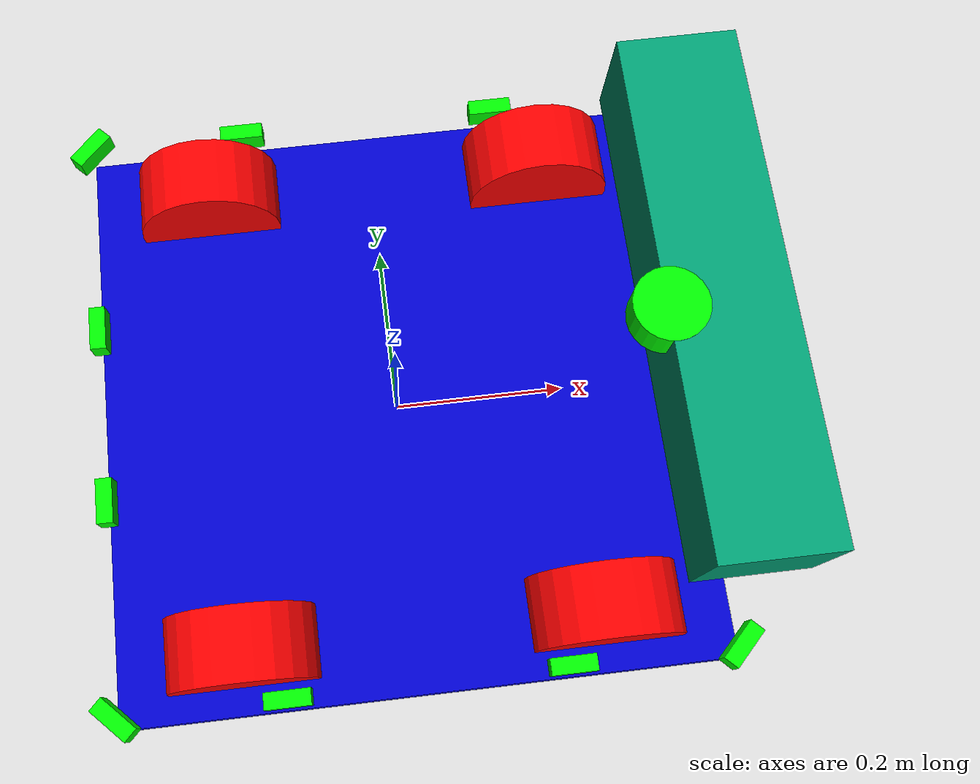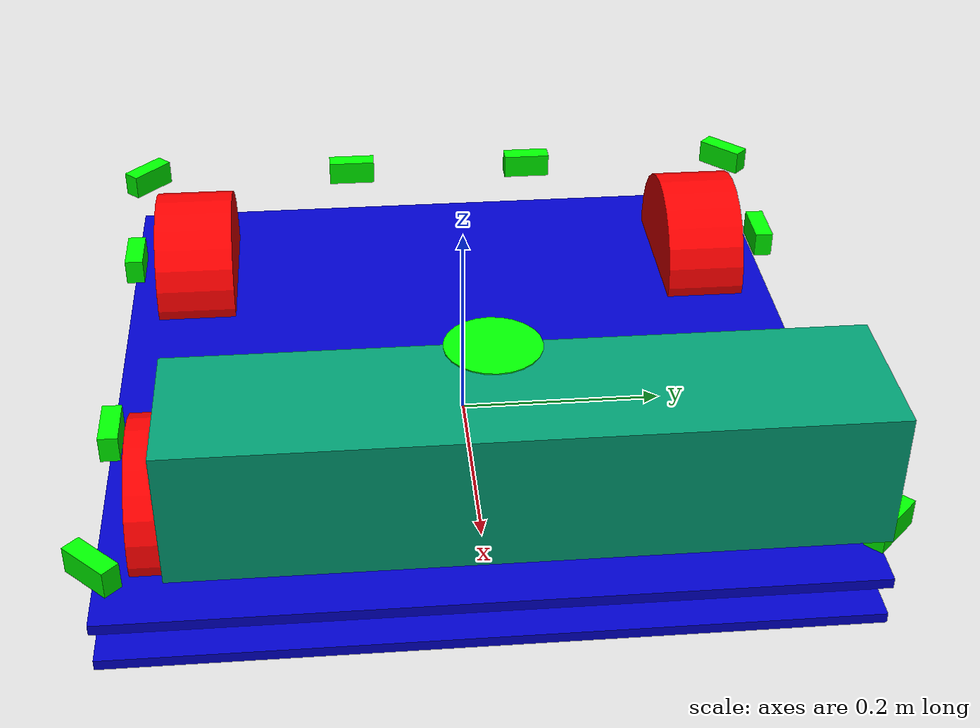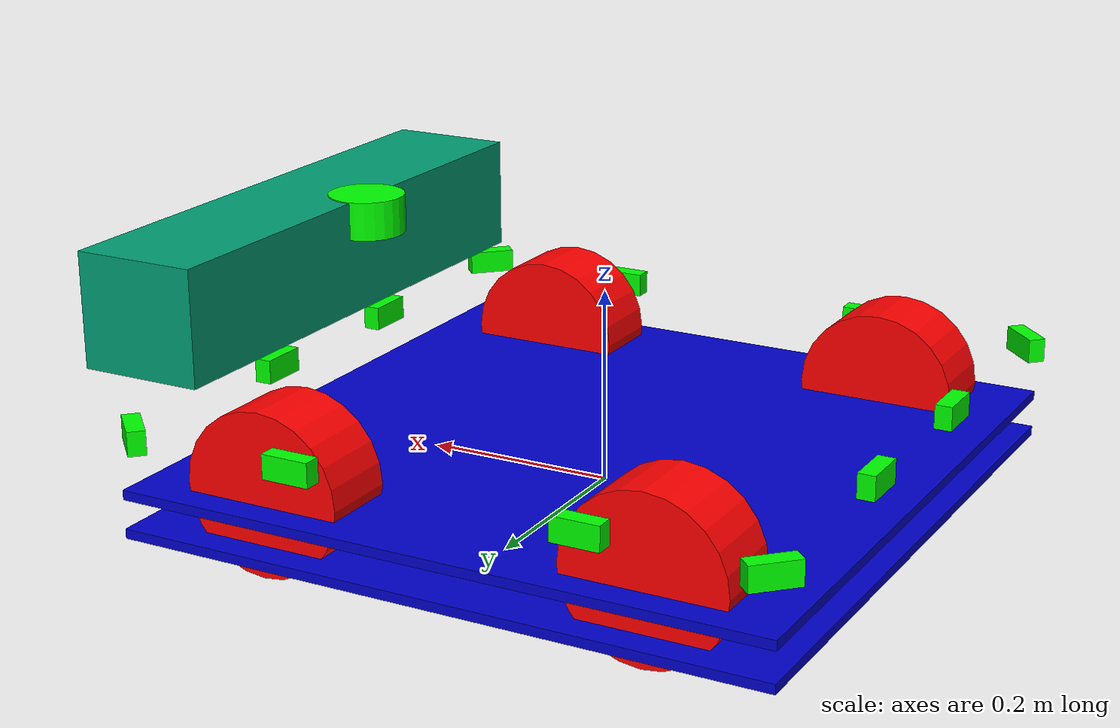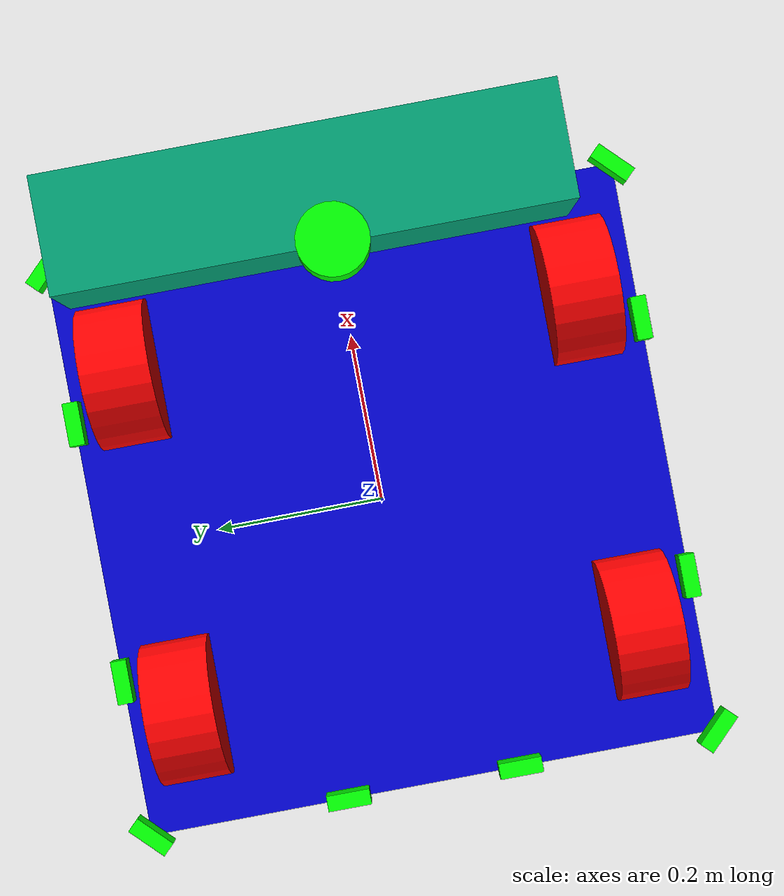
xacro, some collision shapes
<?xml version="1.0"?>
   <robot name="r2_s" xmlns:xacro="http://ros.org/wiki/xacro">
    <xacro:include filename="$(find linorobot_mecanum)/urdf/_r200.urdf.xacro"/>

    <link name="base_link">
      <visual>
        <geometry>
          <box size="0.68 0.68 0.01"/>
        </geometry>
        <origin rpy="0 0 0" xyz="0.0 0.00 0.03"/>
        <material name="blue">
          <color rgba="0 0 .8 1"/>
        </material>
      </visual>
    </link>

    <link name="base_footprint">
      <visual>
        <geometry>
          <box size="0.68 0.68 0.01"/>
        </geometry>
        <origin rpy="0 0 0" xyz="0.0 0.0 0.0"/>
        <material name="blue">
          <color rgba="0 0 .8 1"/>
        </material>
      </visual>
    </link>

    <joint name="base_to_footprint" type="fixed">
      <parent link="base_footprint"/>
       <child link="base_link"/>
      <origin xyz="0 0 0.01"/>
    </joint>

    <sensor_r200 parent="base_link">
       <origin xyz="0.34 0.02 0.195" rpy="0 0 0"/>
    </sensor_r200>

    <link name="wheel_left_front">
      <visual>
        <geometry>
          <cylinder length="0.08" radius="0.0835"/>
        </geometry>
        <origin rpy="1.57 0 0" xyz="0.2 0.27 0.045"/>
        <material name="red">
          <color rgba="255 0 0 1"/>
        </material>
      </visual>
    </link>

    <link name="wheel_left_rear">
      <visual>
        <geometry>
          <cylinder length="0.08" radius="0.0835"/>
        </geometry>
        <origin rpy="1.57 0 0" xyz="-0.2 0.27 0.045"/>
        <material name="red">
          <color rgba="255 0 0 1"/>
        </material>
      </visual>
    </link>

    <link name="wheel_right_front">
      <visual>
        <geometry>
          <cylinder length="0.08" radius="0.0835"/>
        </geometry>
        <origin rpy="1.57 0 0" xyz="0.2 -0.27 0.045"/>
        <material name="red">
          <color rgba="255 0 0 1"/>
        </material>
      </visual>
    </link>

    <link name="wheel_right_rear">
      <visual>
        <geometry>
          <cylinder length="0.08" radius="0.0835"/>
        </geometry>
        <origin rpy="1.57 0 0" xyz="-0.2 -0.27 0.045"/>
        <material name="red">
          <color rgba="255 0 0 1"/>
        </material>
      </visual>
    </link>
    <link name="laser">
      <visual>
        <geometry>
          <cylinder length="0.04" radius="0.04"/>
        </geometry>
        <material name="green">
          <color rgba="0 255 0 1"/>
        </material>
      </visual>
    </link>

    <link name="us1">
      <visual>
        <geometry>
          <box size="0.018 0.05 0.025"/>
        </geometry>
        <material name="green">
          <color rgba="0 255 0 1"/>
        </material>
      </visual>
    </link>

    <link name="us2">
      <visual>
        <geometry>
          <box size="0.018 0.05 0.025"/>
        </geometry>
        <material name="green">
          <color rgba="0 255 0 1"/>
        </material>
      </visual>
    </link>

    <link name="us3">
      <visual>
        <geometry>
          <box size="0.018 0.05 0.025"/>
        </geometry>
        <material name="green">
          <color rgba="0 255 0 1"/>
        </material>
      </visual>
    </link>

    <link name="us4">
      <visual>
        <geometry>
          <box size="0.018 0.05 0.025"/>
        </geometry>
        <material name="green">
          <color rgba="0 255 0 1"/>
        </material>
      </visual>
    </link>

    <link name="us5">
      <visual>
        <geometry>
          <box size="0.018 0.05 0.025"/>
        </geometry>
        <material name="green">
          <color rgba="0 255 0 1"/>
        </material>
      </visual>
    </link>

    <link name="us6">
      <visual>
        <geometry>
          <box size="0.018 0.05 0.025"/>
        </geometry>
        <material name="green">
          <color rgba="0 255 0 1"/>
        </material>
      </visual>
    </link>

    <link name="us7">
      <visual>
        <geometry>
          <box size="0.018 0.05 0.025"/>
        </geometry>
        <material name="green">
          <color rgba="0 255 0 1"/>
        </material>
      </visual>
    </link>

    <link name="us8">
      <visual>
        <geometry>
          <box size="0.018 0.05 0.025"/>
        </geometry>
        <material name="green">
          <color rgba="0 255 0 1"/>
        </material>
      </visual>
    </link>

    <link name="us9">
      <visual>
        <geometry>
          <box size="0.018 0.05 0.025"/>
        </geometry>
        <material name="green">
          <color rgba="0 255 0 1"/>
        </material>
      </visual>
    </link>

    <link name="us10">
      <visual>
        <geometry>
          <box size="0.018 0.05 0.025"/>
        </geometry>
        <material name="green">
          <color rgba="0 255 0 1"/>
        </material>
      </visual>
    </link>

    <link name="us11">
      <visual>
        <geometry>
          <box size="0.018 0.05 0.025"/>
        </geometry>
        <material name="green">
          <color rgba="0 255 0 1"/>
        </material>
      </visual>
    </link>

    <link name="us12">
      <visual>
        <geometry>
          <box size="0.018 0.05 0.025"/>
        </geometry>
        <material name="green">
          <color rgba="0 255 0 1"/>
        </material>
      </visual>
    </link>

    <joint name="base_to_wheel_left_front" type="fixed">
      <parent link="base_link"/>
       <child link="wheel_left_front"/>
      <origin xyz="0 0 0"/>
    </joint>

    <joint name="base_to_wheel_left_rear" type="fixed">
      <parent link="base_link"/>
       <child link="wheel_left_rear"/>
      <origin xyz="0 0 0"/>
    </joint>

    <joint name="base_to_wheel_right_front" type="fixed">
      <parent link="base_link"/>
       <child link="wheel_right_front"/>
      <origin xyz="0 0 0"/>
    </joint>

    <joint name="base_to_wheel_right_rear" type="fixed">
      <parent link="base_link"/>
       <child link="wheel_right_rear"/>
      <origin xyz="0 0 0"/>
    </joint>

    <joint name="base_to_laser" type="fixed">
      <parent link="base_link"/>
       <child link="laser"/>
      <origin xyz="0.28 0.0 0.235" rpy="0 0 1.57"/>
    </joint>

    <joint name="base_to_us1" type="fixed">
      <parent link="base_link"/>
       <child link="us1"/>
      <origin xyz="0.33 0.1 0.09" rpy="0 0 0"/>
    </joint>

    <joint name="base_to_us2" type="fixed">
      <parent link="base_link"/>
       <child link="us2"/>
      <origin xyz="0.33 -0.10 0.09" rpy="0 0 0"/>
    </joint>

    <joint name="base_to_us3" type="fixed">
      <parent link="base_link"/>
       <child link="us3"/>
      <origin xyz="0.33 -0.33 0.09" rpy="0 0 -0.785"/>
    </joint>

    <joint name="base_to_us4" type="fixed">
      <parent link="base_link"/>
       <child link="us4"/>
      <origin xyz="0.15 -0.33 0.09" rpy="0 0 -1.570"/>
    </joint>

    <joint name="base_to_us5" type="fixed">
      <parent link="base_link"/>
       <child link="us5"/>
      <origin xyz="-0.15 -0.33 0.09" rpy="0 0 -1.570"/>
    </joint>

    <joint name="base_to_us6" type="fixed">
      <parent link="base_link"/>
       <child link="us6"/>
      <origin xyz="-0.33 -0.33 0.09" rpy="0 0 -2.355"/>
    </joint>

    <joint name="base_to_us7" type="fixed">
      <parent link="base_link"/>
       <child link="us7"/>
      <origin xyz="-0.33 -0.10 0.09" rpy="0 0 -3.14159"/>
    </joint>

    <joint name="base_to_us8" type="fixed">
      <parent link="base_link"/>
       <child link="us8"/>
      <origin xyz="-0.33 0.10 0.09" rpy="0 0 -3.14159"/>
    </joint>

    <joint name="base_to_us9" type="fixed">
      <parent link="base_link"/>
       <child link="us9"/>
      <origin xyz="-0.33 0.33 0.09" rpy="0 0 2.355"/>
    </joint>

    <joint name="base_to_us10" type="fixed">
      <parent link="base_link"/>
       <child link="us10"/>
      <origin xyz="-0.15 0.33 0.09" rpy="0 0 1.570"/>
    </joint>

    <joint name="base_to_us11" type="fixed">
      <parent link="base_link"/>
       <child link="us11"/>
      <origin xyz="0.15 0.33 0.09" rpy="0 0 1.570"/>
    </joint>

	<joint name="base_to_us12" type="fixed">
      <parent link="base_link"/>
      <child link="us12"/>
      <origin xyz="0.33 0.33 0.09" rpy="0 0 0.785"/>
    </joint>
</robot>

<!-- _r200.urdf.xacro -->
<!--
License: Apache 2.0. See LICENSE file in root directory.
Copyright(c) 2017 Intel Corporation. All Rights Reserved
-->

<robot name="sensor_r200" xmlns:xacro="http://ros.org/wiki/xacro">
  <xacro:property name="M_PI" value="3.1415926535897931" />

  <xacro:property name="r200_cam_rgb_px" value="0.005"/>
  <xacro:property name="r200_cam_rgb_py" value="0.018"/>
  <xacro:property name="r200_cam_rgb_pz" value="0.013"/>
  <xacro:property name="r200_cam_depth_offset" value="0.01"/>

  <xacro:macro name="sensor_r200" params="parent *origin">

    <!-- camera body, with origin at bottom -->
    <joint name="camera_joint" type="fixed">
      <xacro:insert_block name="origin" />
      <parent link="${parent}"/>
      <child link="camera_link" />
    </joint>
    <link name="camera_link">
      <visual>
      <origin xyz="0 0 0" rpy="${M_PI/2} 0 ${M_PI/2}"/>
      <geometry>
        <mesh filename="package://linorobot_mecanum/meshes/r200/r200.dae" />
      </geometry>
      </visual>
      <collision>
        <origin xyz="0.0 0.0 0.0" rpy="0 0 0"/>
        <geometry>
          <box size="0.130 0.567 0.118"/>
        </geometry>
      </collision>
      <!-- The following are not reliable values, and should not be used for modeling -->
      <inertial>
        <mass value="0.564" />
        <origin xyz="0 0 0" />
        <inertia ixx="0.003881243" ixy="0.0" ixz="0.0" iyy="0.000498940" iyz="0.0" izz="0.003879257" />
      </inertial>
    </link>

    <!-- camera rgb joints and links -->
    <joint name="camera_rgb_joint" type="fixed">
      <origin xyz="${r200_cam_rgb_px} ${r200_cam_rgb_py} ${r200_cam_rgb_pz}" rpy="0 0 0"/>
      <parent link="camera_link"/>
      <child link="camera_rgb_frame" />
    </joint>
    <link name="camera_rgb_frame"/>

    <joint name="camera_rgb_optical_joint" type="fixed">
      <origin xyz="0 0 0" rpy="${-M_PI/2} 0 ${-M_PI/2}" />
      <parent link="camera_rgb_frame" />
      <child link="camera_rgb_optical_frame" />
    </joint>
    <link name="camera_rgb_optical_frame"/>

    <!-- camera depth joints and links -->
    <joint name="camera_depth_joint" type="fixed">
      <origin xyz="0 ${r200_cam_depth_offset} 0" rpy="0 0 0" />
      <parent link="camera_rgb_frame" />
      <child link="camera_depth_frame" />
    </joint>
    <link name="camera_depth_frame"/>

    <joint name="camera_depth_optical_joint" type="fixed">
      <origin xyz="0 0 0" rpy="${-M_PI/2} 0 ${-M_PI/2}" />
      <parent link="camera_depth_frame" />
      <child link="camera_depth_optical_frame" />
    </joint>
    <link name="camera_depth_optical_frame"/>
  </xacro:macro>
</robot>
